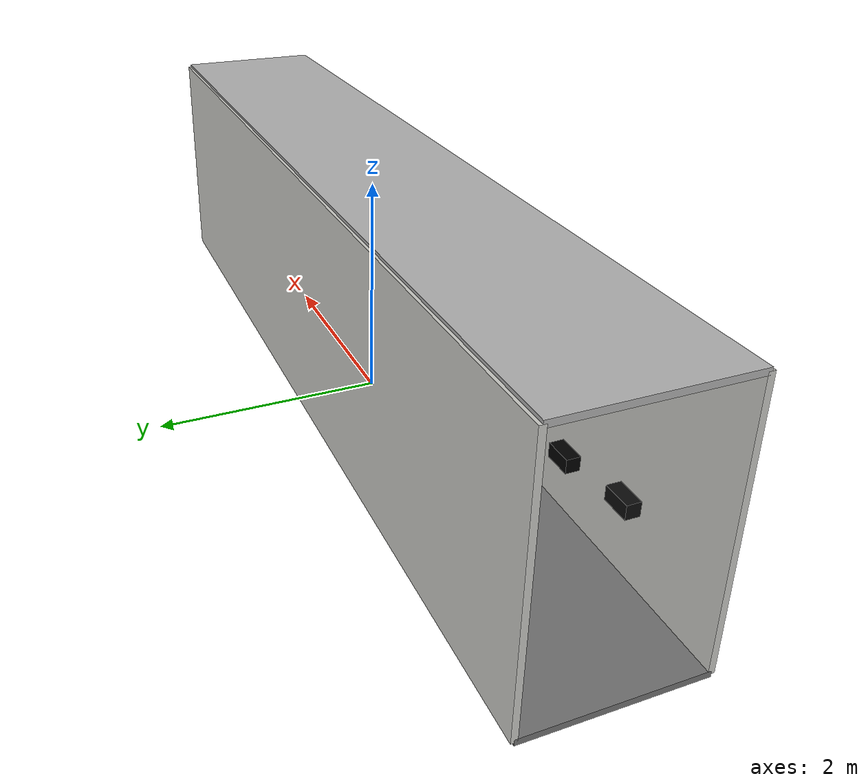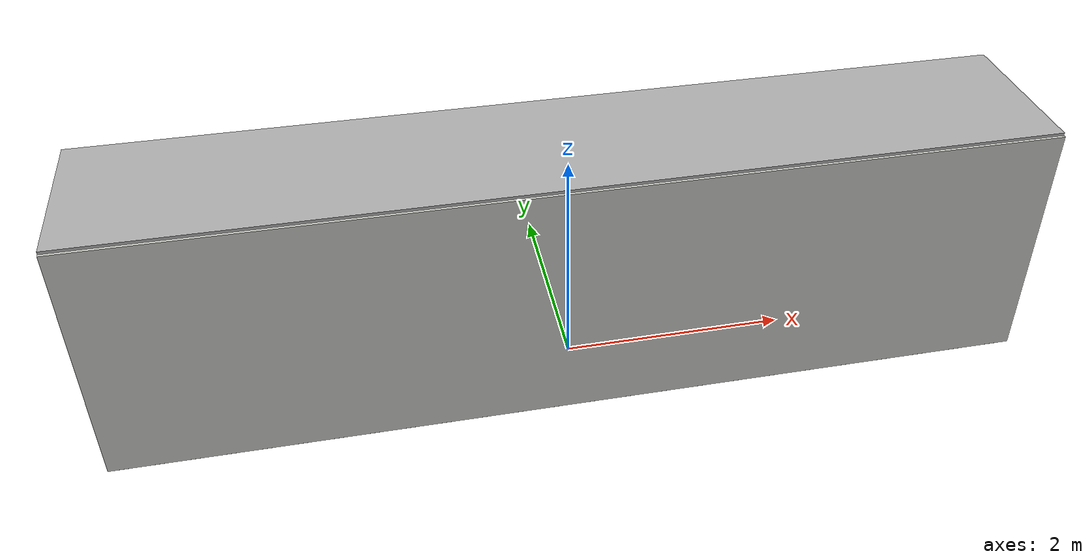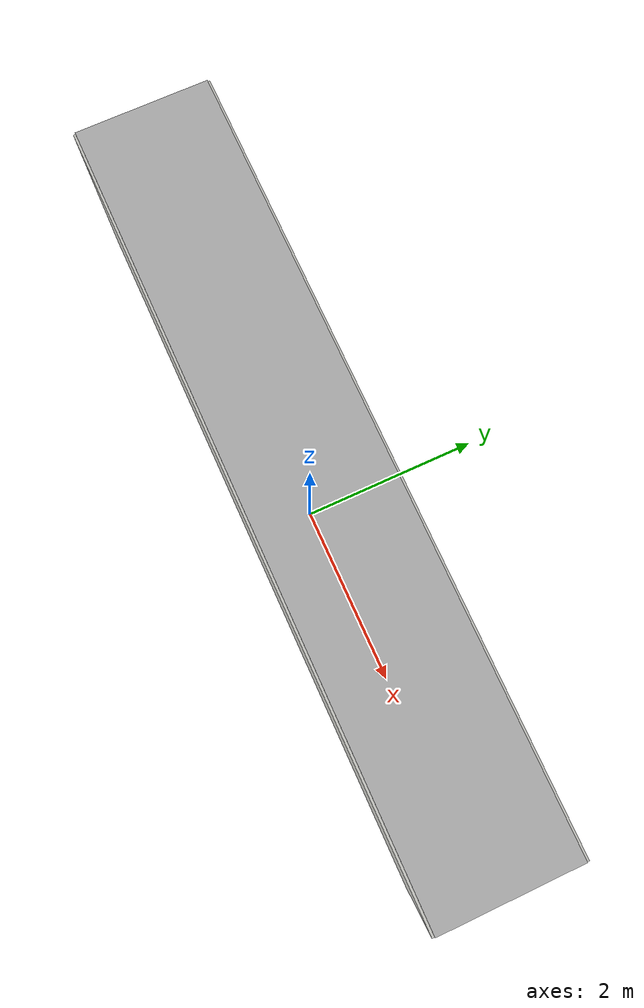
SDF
<?xml version="1.0" ?>
<sdf version="1.8">
  <world name="minimal_bus_corridor_world">

    <physics name="1ms" type="ignored">
      <max_step_size>0.001</max_step_size>
      <real_time_factor>1.0</real_time_factor>
    </physics>

    <plugin filename="ignition-gazebo-physics-system"
            name="ignition::gazebo::systems::Physics"/>
    <plugin filename="ignition-gazebo-user-commands-system"
            name="ignition::gazebo::systems::UserCommands"/>
    <plugin filename="ignition-gazebo-scene-broadcaster-system"
            name="ignition::gazebo::systems::SceneBroadcaster"/>
    <plugin filename="ignition-gazebo-sensors-system"
            name="ignition::gazebo::systems::Sensors">
      <render_engine>ogre2</render_engine>
    </plugin>

    <scene>
      <ambient>0.55 0.55 0.55 1</ambient>
      <background>0.78 0.82 0.86 1</background>
      <shadows>true</shadows>
    </scene>

    <light name="ceiling_light" type="directional">
      <pose>0 0 5.0 0 0 0</pose>
      <cast_shadows>true</cast_shadows>
      <direction>-0.4 0 -0.9</direction>
      <diffuse>0.9 0.9 0.85 1</diffuse>
      <specular>0.2 0.2 0.2 1</specular>
    </light>

    <!-- Minimal bus corridor: x = bus length, y = bus width, z = height -->

    <model name="corridor_floor">
      <static>true</static>
      <pose>0 0 0 0 0 0</pose>
      <link name="link">
        <collision name="collision">
          <geometry>
            <box>
              <size>8.0 1.4 0.05</size>
            </box>
          </geometry>
        </collision>
        <visual name="visual">
          <geometry>
            <box>
              <size>8.0 1.4 0.05</size>
            </box>
          </geometry>
          <material>
            <ambient>0.45 0.45 0.45 1</ambient>
            <diffuse>0.45 0.45 0.45 1</diffuse>
          </material>
        </visual>
      </link>
    </model>

    <model name="left_wall">
      <static>true</static>
      <pose>0 0.7 1.1 0 0 0</pose>
      <link name="link">
        <collision name="collision">
          <geometry>
            <box>
              <size>8.0 0.05 2.2</size>
            </box>
          </geometry>
        </collision>
        <visual name="visual">
          <geometry>
            <box>
              <size>8.0 0.05 2.2</size>
            </box>
          </geometry>
          <material>
            <ambient>0.80 0.80 0.78 1</ambient>
            <diffuse>0.80 0.80 0.78 1</diffuse>
          </material>
        </visual>
      </link>
    </model>

    <model name="right_wall">
      <static>true</static>
      <pose>0 -0.7 1.1 0 0 0</pose>
      <link name="link">
        <collision name="collision">
          <geometry>
            <box>
              <size>8.0 0.05 2.2</size>
            </box>
          </geometry>
        </collision>
        <visual name="visual">
          <geometry>
            <box>
              <size>8.0 0.05 2.2</size>
            </box>
          </geometry>
          <material>
            <ambient>0.80 0.80 0.78 1</ambient>
            <diffuse>0.80 0.80 0.78 1</diffuse>
          </material>
        </visual>
      </link>
    </model>

    <model name="ceiling">
      <static>true</static>
      <pose>0 0 2.2 0 0 0</pose>
      <link name="link">
        <visual name="visual">
          <geometry>
            <box>
              <size>8.0 1.4 0.05</size>
            </box>
          </geometry>
          <material>
            <ambient>0.70 0.70 0.70 1</ambient>
            <diffuse>0.70 0.70 0.70 1</diffuse>
          </material>
        </visual>
      </link>
    </model>

    <!-- Front static camera: looking along +X -->
    <model name="front_static_camera">
      <static>true</static>
      <pose>-3.8 0 1.4 0 0 0</pose>
      <link name="camera_link">
        <visual name="body">
          <geometry>
            <box>
              <size>0.20 0.10 0.10</size>
            </box>
          </geometry>
          <material>
            <ambient>0.05 0.05 0.05 1</ambient>
            <diffuse>0.05 0.05 0.05 1</diffuse>
          </material>
        </visual>

        <sensor name="front_camera_sensor" type="camera">
          <always_on>true</always_on>
          <update_rate>10</update_rate>
          <visualize>true</visualize>
          <topic>/front_static_camera/image</topic>
          <camera_info_topic>/front_static_camera/camera_info</camera_info_topic>

          <camera>
            <horizontal_fov>1.0471975512</horizontal_fov>
            <image>
              <width>640</width>
              <height>480</height>
              <format>R8G8B8</format>
            </image>
            <clip>
              <near>0.05</near>
              <far>20.0</far>
            </clip>
          </camera>
        </sensor>
      </link>
    </model>

    <!-- Rear static camera: looking along -X -->
    <model name="rear_static_camera">
      <static>true</static>
      <pose>3.8 0 1.4 0 0 3.14159</pose>
      <link name="camera_link">
        <visual name="body">
          <geometry>
            <box>
              <size>0.20 0.10 0.10</size>
            </box>
          </geometry>
          <material>
            <ambient>0.05 0.05 0.05 1</ambient>
            <diffuse>0.05 0.05 0.05 1</diffuse>
          </material>
        </visual>

        <sensor name="rear_camera_sensor" type="camera">
          <always_on>true</always_on>
          <update_rate>10</update_rate>
          <visualize>true</visualize>
          <topic>/rear_static_camera/image</topic>
          <camera_info_topic>/rear_static_camera/camera_info</camera_info_topic>

          <camera>
            <horizontal_fov>1.0471975512</horizontal_fov>
            <image>
              <width>640</width>
              <height>480</height>
              <format>R8G8B8</format>
            </image>
            <clip>
              <near>0.05</near>
              <far>20.0</far>
            </clip>
          </camera>
        </sensor>
      </link>
    </model>

    <!-- Moving camera: will be moved by external script -->
    <model name="moving_camera">
      <static>true</static>
      <pose>-3.2 0 1.3 0 0 0</pose>

      <link name="camera_link">
        <inertial>
          <mass>0.1</mass>
          <inertia>
            <ixx>0.001</ixx>
            <iyy>0.001</iyy>
            <izz>0.001</izz>
            <ixy>0</ixy>
            <ixz>0</ixz>
            <iyz>0</iyz>
          </inertia>
        </inertial>

        <visual name="body">
          <geometry>
            <box>
              <size>0.20 0.10 0.10</size>
            </box>
          </geometry>
          <material>
            <ambient>0 0 0 1</ambient>
            <diffuse>0 0 0 1</diffuse>
          </material>
        </visual>

        <collision name="collision">
          <geometry>
            <box>
              <size>0.20 0.10 0.10</size>
            </box>
          </geometry>
        </collision>

        <sensor name="moving_camera_sensor" type="camera">
          <always_on>true</always_on>
          <update_rate>10</update_rate>
          <visualize>true</visualize>
          <topic>/moving_camera/image</topic>
          <camera_info_topic>/moving_camera/camera_info</camera_info_topic>

          <camera>
            <horizontal_fov>1.0471975512</horizontal_fov>
            <image>
              <width>640</width>
              <height>480</height>
              <format>R8G8B8</format>
            </image>
            <clip>
              <near>0.05</near>
              <far>20.0</far>
            </clip>
          </camera>
        </sensor>
      </link>
    </model>

  </world>
</sdf>
